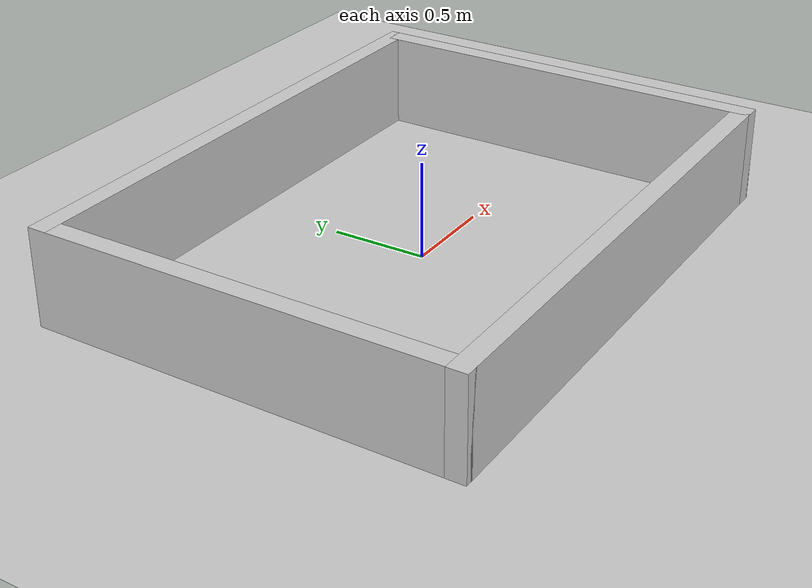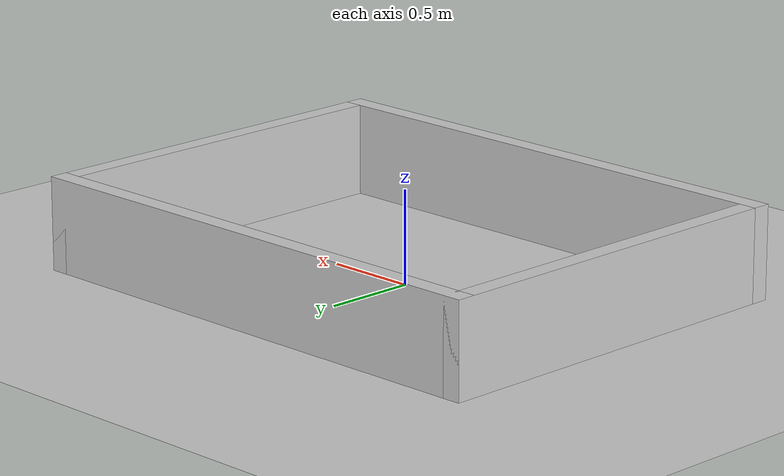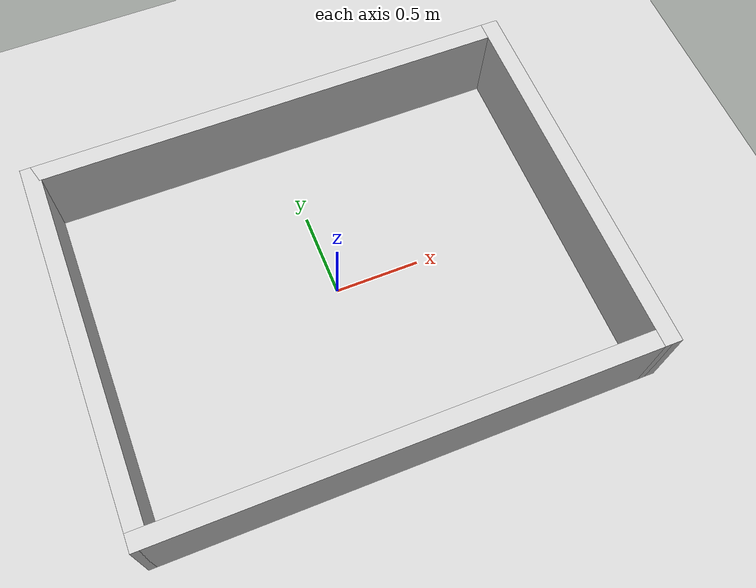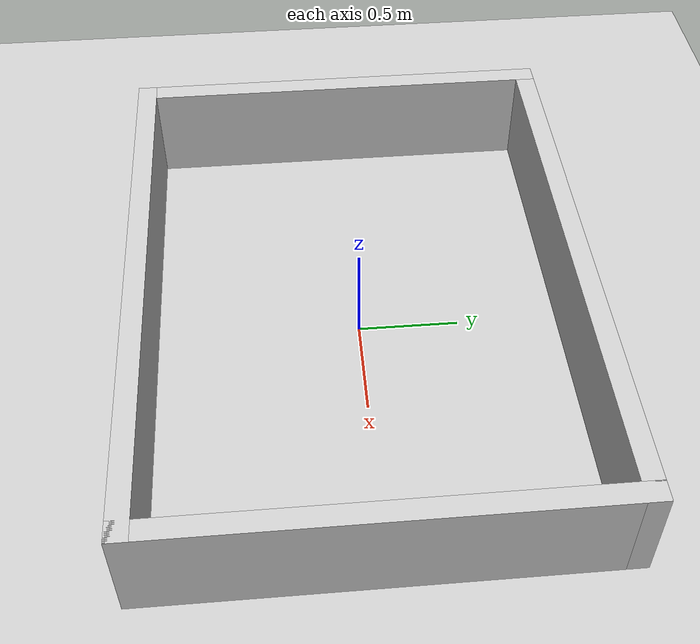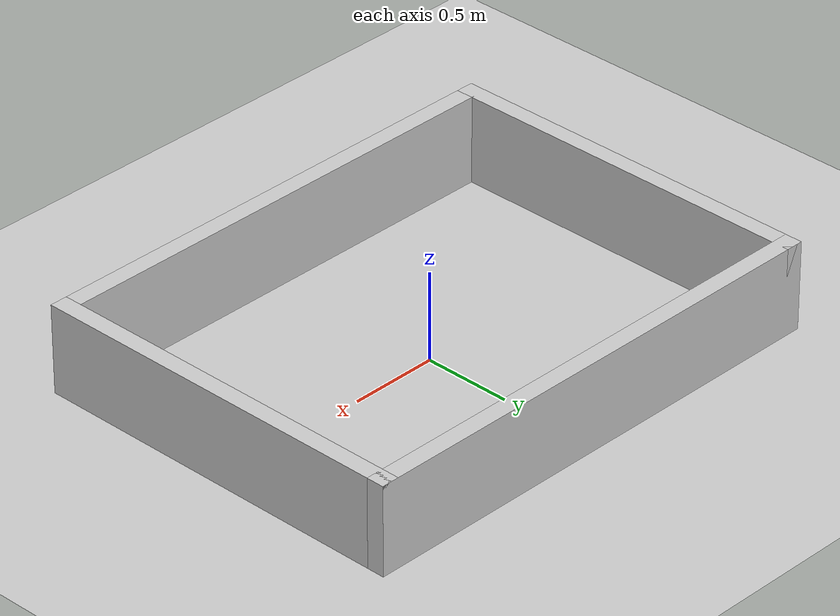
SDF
<?xml version="1.0" ?>
<sdf version="1.6">
  <world name="competition_arena">
    <include>
      <uri>model://ground_plane</uri>
    </include>
    <include>
      <uri>model://sun</uri>
    </include>

    <physics type="ode">
      <real_time_update_rate>1000</real_time_update_rate>
      <max_step_size>0.001</max_step_size>
      <real_time_factor>1.0</real_time_factor>
    </physics>

    <scene>
      <ambient>0.5 0.5 0.5 1</ambient>
      <background>0.7 0.7 0.7 1</background>
    </scene>

    <!-- Perimeter walls for a 2.10m x 2.80m arena -->
    <model name="wall_north">
      <static>true</static>
      <pose>0 1.05 0.25 0 0 0</pose>
      <link name="link">
        <collision name="collision">
          <geometry><box><size>2.9 0.1 0.5</size></box></geometry>
        </collision>
        <visual name="visual">
          <geometry><box><size>2.9 0.1 0.5</size></box></geometry>
          <material><ambient>0.8 0.8 0.8 1</ambient></material>
        </visual>
      </link>
    </model>
    <model name="wall_south">
      <static>true</static>
      <pose>0 -1.05 0.25 0 0 0</pose>
      <link name="link">
        <collision name="collision">
          <geometry><box><size>2.9 0.1 0.5</size></box></geometry>
        </collision>
        <visual name="visual">
          <geometry><box><size>2.9 0.1 0.5</size></box></geometry>
          <material><ambient>0.8 0.8 0.8 1</ambient></material>
        </visual>
      </link>
    </model>
    <model name="wall_east">
      <static>true</static>
      <pose>1.4 0 0.25 0 0 1.5708</pose>
      <link name="link">
        <collision name="collision">
          <geometry><box><size>2.2 0.1 0.5</size></box></geometry>
        </collision>
        <visual name="visual">
          <geometry><box><size>2.2 0.1 0.5</size></box></geometry>
          <material><ambient>0.8 0.8 0.8 1</ambient></material>
        </visual>
      </link>
    </model>
    <model name="wall_west">
      <static>true</static>
      <pose>-1.4 0 0.25 0 0 1.5708</pose>
      <link name="link">
        <collision name="collision">
          <geometry><box><size>2.2 0.1 0.5</size></box></geometry>
        </collision>
        <visual name="visual">
          <geometry><box><size>2.2 0.1 0.5</size></box></geometry>
          <material><ambient>0.8 0.8 0.8 1</ambient></material>
        </visual>
      </link>
    </model>

  </world>
</sdf>
